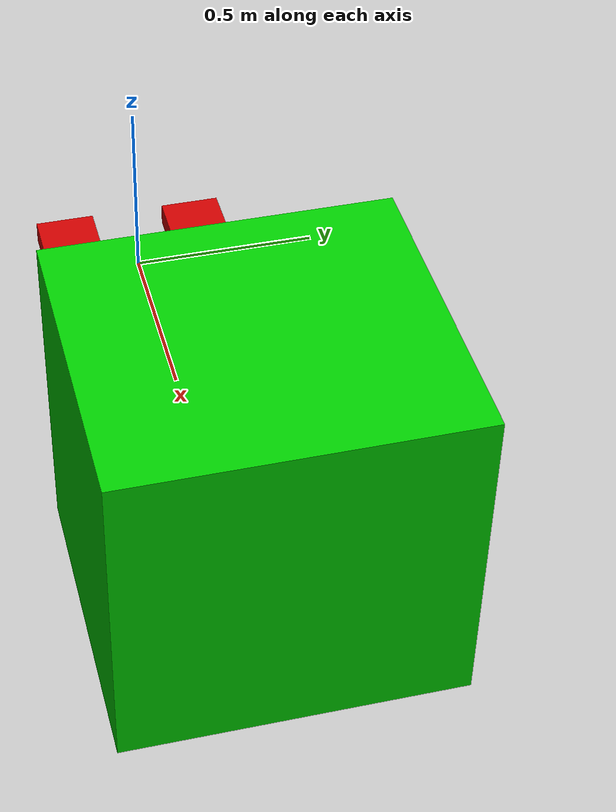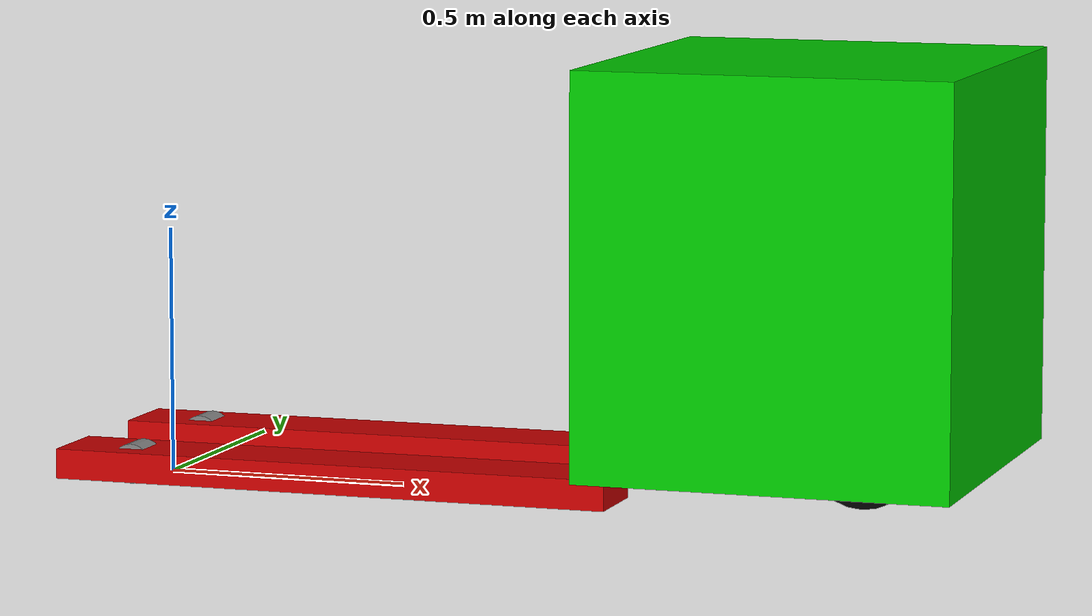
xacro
<?xml version="1.0"?>

<robot name="sfy_forklift_bot" xmlns:xacro="http://www.ros.org/wiki/xacro">

  <xacro:include filename="$(find turn_on_sfy_robot)/urdf/common_ma.xacro" />
  <xacro:arg name="use_nominal_extrinsics" default="false" />

  <xacro:property name="M_PI" value="3.1415926535897931" />
  <xacro:property name="negative_half_pi" value="${M_PI * 0.5}" />
  <xacro:property name="sfy_forklift_steer_max" value="${ M_PI / 3}" />
  <xacro:property name="sfy_forklift_steer_min" value="${-M_PI / 3}" />

  <link name="base_footprint">
  </link>

  <joint name="base_footprint_joint" type="fixed">
    <origin xyz="0 0 0.05" rpy="0 0 0" />
    <child link="base_link" />
    <parent link="base_footprint"/>
  </joint>

  <!-- Base Link -->
  <link name="base_link">
    <inertial>
      <mass value="20"/>
      <inertia ixx="1" ixy="0" ixz="0" iyy="1" iyz="0" izz="1" />
      <origin/>
    </inertial>
    <visual>
      <origin xyz="1.352 0 0.44" rpy="0 0 0" />
      <geometry>
        <box size="0.74 0.79 0.79" />
      </geometry>
      <material name="green_sfy"/>
    </visual>

    <collision>
      <origin xyz="1.352 0 0.44" rpy="0 0 0" />
      <geometry>
        <box size="0.74 0.40 0.79" />
      </geometry>
    </collision>
  </link>

  <link name="left_fork">
    <inertial>
      <mass value="1" />
      <origin xyz="0 0 0.0" />
      <inertia ixx="0.01" ixy="0.0" ixz="0.0"
                iyy="0.01" iyz="0.0" izz="0.01" />
    </inertial>
    <visual>
      <origin xyz="0 0 0.0" rpy="0 0 0" />
      <geometry>
        <box size="1.15 0.16 0.06" />
      </geometry>

      <material name="red_sfy" />
    </visual>
    <collision>
      <origin xyz="0 0 0.0" rpy="0 0 0" />
      <geometry>
        <box size="1.15 0.16 0.06" />
      </geometry>
    </collision>
  </link>

  <link name="right_fork">
    <inertial>
      <mass value="1" />
      <origin xyz="0 0 0.0" />
      <inertia ixx="0.01" ixy="0.0" ixz="0.0"
                iyy="0.01" iyz="0.0" izz="0.01" />
    </inertial>
    <visual>
      <origin xyz="0 0 0.0" rpy="0 0 0" />
      <geometry>
        <box size="1.15 0.16 0.06" />
      </geometry>

      <material name="red_sfy" />
    </visual>
    <collision>
      <origin xyz="0 0 0.0" rpy="0 0 0" />
      <geometry>
        <box size="1.15 0.16 0.06" />
      </geometry>
    </collision>
  </link>

  <link name="base_fork">
    <inertial>
      <mass value="0.1" />
      <origin xyz="0 0 0.0" />
      <inertia ixx="0.01" ixy="0.0" ixz="0.0"
                iyy="0.01" iyz="0.0" izz="0.01" />
    </inertial>
    <visual>
      <origin xyz="0 0 0.0" rpy="0 0 0" />
      <geometry>
        <box size="0.01 0.01 0.01" />
      </geometry>

      <material name="grey_sfy" />
    </visual>
  </link>

  <!-- static joint connect the single prismatic joint with the forks... -->
  <joint name="left_fork_joint" type="fixed">
    <origin xyz="0 0.18 0.0" rpy="0 0 0" />
    <child link="left_fork" />
    <parent link="base_fork"/>
  </joint>

  <joint name="right_fork_joint" type="fixed">
    <origin xyz="0.0 -0.18 0.0" rpy="0 0 0" />
    <child link="right_fork" />
    <parent link="base_fork"/>
  </joint>

  <joint name="fork_joint" type="prismatic">
    <origin xyz="0.432 0.0 0.0" rpy="0 0 0" />
    <parent link="base_link" />
    <child link="base_fork"/>
    <axis xyz="0 0 1" />
    <limit lower="-1" upper="1" effort="1000" velocity="100" />
  </joint>

  <link name="steer_link">
    <inertial>
      <mass value="0.01"/>
      <inertia ixx="0.001" ixy="0" ixz="0" iyy="0.001" iyz="0" izz="0.001" />
      <origin/>
    </inertial>
    <visual>
      <origin xyz="0 0 0" rpy="0 0 0" />
      <geometry>
        <box size="0.1 0.1 0.1" />
      </geometry>
      <material name="orange_sfy"/>
    </visual>
  </link>

  <link name="sd_wheel_link">
    <inertial>
      <mass value="10"/>
      <inertia ixx="0.01" ixy="0" ixz="0" iyy="0.01" iyz="0" izz="0.01" />
      <origin/>
    </inertial>
    <visual>
      <origin xyz="0 0 0" rpy="1.57 0 0" />
      <geometry>
        <cylinder radius="0.115" length="0.07" />
      </geometry>
      <material name="black_sfy"/>
    </visual>

    <collision>
      <origin xyz="0 0 0" rpy="1.57 0 0" />
      <geometry>
        <cylinder radius="0.115" length="0.07" />
      </geometry>
    </collision>
  </link>

  <joint name="base2steer_joint" type="revolute">
    <parent link="base_link"/>
    <child link="steer_link"/>
    <limit effort="10000.0" lower="${sfy_forklift_steer_min}" upper="${sfy_forklift_steer_max}" velocity="100"/>
    <origin xyz="1.462 0 0.076" rpy="0 0 0" />
    <axis xyz="0 0 1" />
  </joint>

  <joint name="steer2sd_wheel_joint" type="continuous">
    <parent link="steer_link"/>
    <child link="sd_wheel_link"/>
    <limit effort="10000.0" velocity="100"/>
    <origin xyz="0 0 0" rpy="0 0 0" />
    <axis xyz="0 1 0" />
  </joint>

  <link name="fixed_left_wheel_link">
    <inertial>
      <mass value="0.1"/>
      <inertia ixx="0.01" ixy="0" ixz="0" iyy="0.01" iyz="0" izz="0.01" />
      <origin/>
    </inertial>
    <visual>
      <origin xyz="0 0 0" rpy="1.57 0 0" />
      <geometry>
        <cylinder radius="0.04" length="0.07" />
      </geometry>
      <material name="grey_sfy"/>
    </visual>

    <collision>
      <origin xyz="0 0 0" rpy="1.57 0 0" />
      <geometry>
        <cylinder radius="0.04" length="0.07" />
      </geometry>
    </collision>
  </link>

  <joint name="base2fixed_left_wheel_joint" type="continuous">
    <parent link="base_link"/>
    <child link="fixed_left_wheel_link"/>
    <origin xyz="0.0 0.18 0.0" rpy="0 0 0" />
    <axis xyz="0 1 0" />
  </joint>

  <link name="fixed_right_wheel_link">
    <inertial>
      <mass value="0.1"/>
      <inertia ixx="0.01" ixy="0" ixz="0" iyy="0.01" iyz="0" izz="0.01" />
      <origin/>
    </inertial>
    <visual>
      <origin xyz="0 0 0" rpy="1.57 0 0" />
      <geometry>
        <cylinder radius="0.04" length="0.07" />
      </geometry>
      <material name="grey_sfy"/>
    </visual>

    <collision>
      <origin xyz="0 0 0" rpy="1.57 0 0" />
      <geometry>
        <cylinder radius="0.04" length="0.07" />
      </geometry>
    </collision>
  </link>

  <joint name="base2fixed_right_wheel_joint" type="continuous">
    <parent link="base_link"/>
    <child link="fixed_right_wheel_link"/>
    <origin xyz="0.0 -0.18 0.0" rpy="0 0 0" />
    <axis xyz="0 1 0" />
  </joint>

</robot>

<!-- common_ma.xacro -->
<robot name="xacro_properties" xmlns:xacro="http://ros.org/wiki/xacro">

  <!-- Init colour -->
  <material name="black_sfy">
      <color rgba="0.0 0.0 0.0 1.0"/>
  </material>

  <material name="dark_sfy">
    <color rgba="0.3 0.3 0.3 1.0"/>
  </material>
  <material name="light_black_sfy">
    <color rgba="0.4 0.4 0.4 1.0"/>
  </material>

  <material name="blue_sfy">
    <color rgba="0.0 0.0 0.8 1.0"/>
  </material>

  <material name="green_sfy">
    <color rgba="0.0 0.8 0.0 1.0"/>
  </material>

  <material name="grey_sfy">
    <color rgba="0.5 0.5 0.5 1.0"/>
  </material>

  <material name="grey2_sfy">
    <color rgba="0.4 0.4 0.4 1.0"/>
  </material>

  <material name="orange_sfy">
    <color rgba="${255/255} ${108/255} ${10/255} 1.0"/>
  </material>

  <material name="brown_sfy">
    <color rgba="${222/255} ${207/255} ${195/255} 1.0"/>
  </material>

  <material name="red_sfy">
    <color rgba="0.8 0.0 0.0 1.0"/>
  </material>

  <material name="white_sfy">
    <color rgba="1.0 1.0 1.0 1.0"/>
  </material>
</robot>
